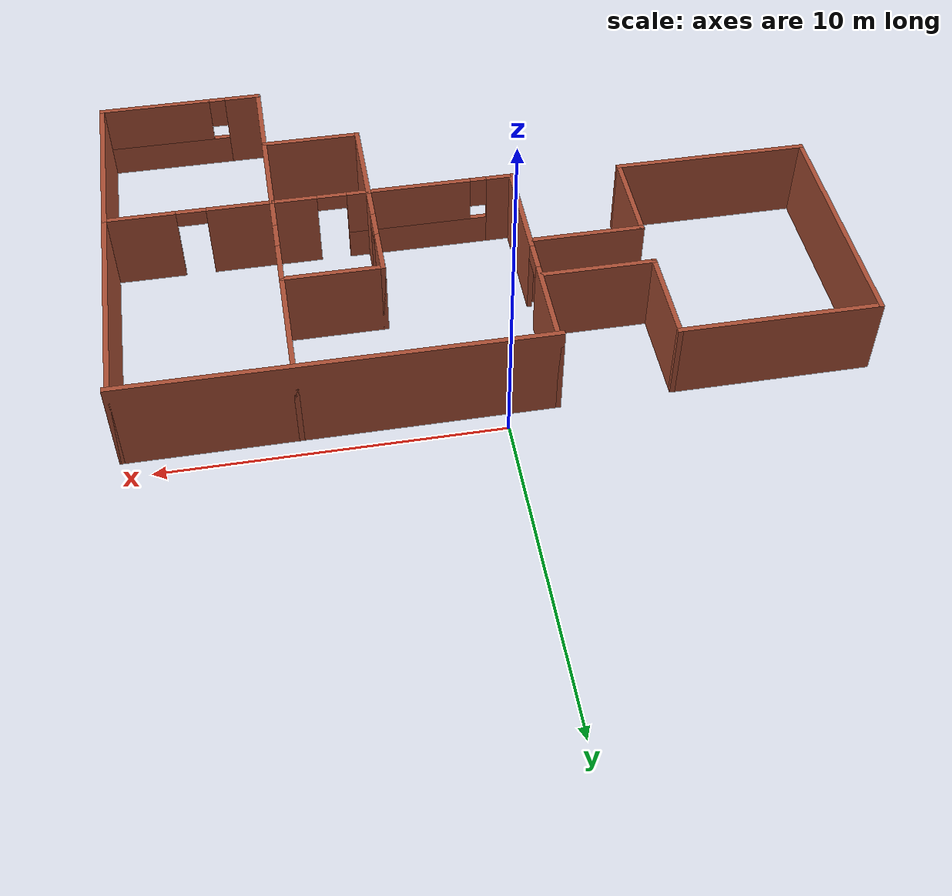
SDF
<?xml version='1.0'?>
<sdf version='1.6'>
  <model name='IslamHouse2'>
    <pose frame=''>0.015 -6.96 0 0 -0 0</pose>
    <link name='Wall_0'>
      <collision name='Wall_0_Collision'>
        <geometry>
          <box>
            <size>12.5 0.15 3</size>
          </box>
        </geometry>
        <pose frame=''>0 0 1.5 0 -0 0</pose>
      </collision>
      <visual name='Wall_0_Visual'>
        <pose frame=''>0 0 1.5 0 -0 0</pose>
        <geometry>
          <box>
            <size>12.5 0.15 3</size>
          </box>
        </geometry>
        <material>
          <script>
            <uri>file://media/materials/scripts/gazebo.material</uri>
            <name>Gazebo/Bricks</name>
          </script>
          <ambient>1 1 1 1</ambient>
        </material>
        <meta>
          <layer>0</layer>
        </meta>
      </visual>
      <pose frame=''>4.61 6.35 0 0 -0 0</pose>
    </link>
    <link name='Wall_10'>
      <pose frame=''>8.21 -1 0 0 -0 0</pose>
      <visual name='Wall_10_Visual_0'>
        <pose frame=''>-1.4725 0 1.25 0 -0 0</pose>
        <geometry>
          <box>
            <size>2.055 0.15 2.5</size>
          </box>
        </geometry>
        <material>
          <script>
            <uri>file://media/materials/scripts/gazebo.material</uri>
            <name>Gazebo/Bricks</name>
          </script>
          <ambient>1 1 1 1</ambient>
        </material>
        <meta>
          <layer>0</layer>
        </meta>
      </visual>
      <collision name='Wall_10_Collision_0'>
        <geometry>
          <box>
            <size>2.055 0.15 2.5</size>
          </box>
        </geometry>
        <pose frame=''>-1.4725 0 1.25 0 -0 0</pose>
      </collision>
      <visual name='Wall_10_Visual_1'>
        <pose frame=''>1.4775 0 1.25 0 -0 0</pose>
        <geometry>
          <box>
            <size>2.045 0.15 2.5</size>
          </box>
        </geometry>
        <material>
          <script>
            <uri>file://media/materials/scripts/gazebo.material</uri>
            <name>Gazebo/Bricks</name>
          </script>
          <ambient>1 1 1 1</ambient>
        </material>
        <meta>
          <layer>0</layer>
        </meta>
      </visual>
      <collision name='Wall_10_Collision_1'>
        <geometry>
          <box>
            <size>2.045 0.15 2.5</size>
          </box>
        </geometry>
        <pose frame=''>1.4775 0 1.25 0 -0 0</pose>
      </collision>
      <visual name='Wall_10_Visual_2'>
        <pose frame=''>0.004999 0 2.25 0 -0 0</pose>
        <geometry>
          <box>
            <size>0.9 0.15 0.5</size>
          </box>
        </geometry>
        <material>
          <script>
            <uri>file://media/materials/scripts/gazebo.material</uri>
            <name>Gazebo/Bricks</name>
          </script>
          <ambient>1 1 1 1</ambient>
        </material>
        <meta>
          <layer>0</layer>
        </meta>
      </visual>
      <collision name='Wall_10_Collision_2'>
        <geometry>
          <box>
            <size>0.9 0.15 0.5</size>
          </box>
        </geometry>
        <pose frame=''>0.004999 0 2.25 0 -0 0</pose>
      </collision>
    </link>
    <link name='Wall_14'>
      <collision name='Wall_14_Collision'>
        <geometry>
          <box>
            <size>7.5 0.15 2.5</size>
          </box>
        </geometry>
        <pose frame=''>0 0 1.25 0 -0 0</pose>
      </collision>
      <visual name='Wall_14_Visual'>
        <pose frame=''>0 0 1.25 0 -0 0</pose>
        <geometry>
          <box>
            <size>7.5 0.15 2.5</size>
          </box>
        </geometry>
        <material>
          <script>
            <uri>file://media/materials/scripts/gazebo.material</uri>
            <name>Gazebo/Bricks</name>
          </script>
          <ambient>1 1 1 1</ambient>
        </material>
        <meta>
          <layer>0</layer>
        </meta>
      </visual>
      <pose frame=''>10.785 2.675 0 0 -0 -1.5708</pose>
    </link>
    <link name='Wall_19'>
      <pose frame=''>2.855 0.715 0 0 -0 1.5708</pose>
      <visual name='Wall_19_Visual_0'>
        <pose frame=''>-1.2025 0 1.25 0 -0 0</pose>
        <geometry>
          <box>
            <size>1.095 0.15 2.5</size>
          </box>
        </geometry>
        <material>
          <script>
            <uri>file://media/materials/scripts/gazebo.material</uri>
            <name>Gazebo/Bricks</name>
          </script>
          <ambient>1 1 1 1</ambient>
        </material>
        <meta>
          <layer>0</layer>
        </meta>
      </visual>
      <collision name='Wall_19_Collision_0'>
        <geometry>
          <box>
            <size>1.095 0.15 2.5</size>
          </box>
        </geometry>
        <pose frame=''>-1.2025 0 1.25 0 -0 0</pose>
      </collision>
      <visual name='Wall_19_Visual_1'>
        <pose frame=''>0.9975 0 1.25 0 -0 0</pose>
        <geometry>
          <box>
            <size>1.505 0.15 2.5</size>
          </box>
        </geometry>
        <material>
          <script>
            <uri>file://media/materials/scripts/gazebo.material</uri>
            <name>Gazebo/Bricks</name>
          </script>
          <ambient>1 1 1 1</ambient>
        </material>
        <meta>
          <layer>0</layer>
        </meta>
      </visual>
      <collision name='Wall_19_Collision_1'>
        <geometry>
          <box>
            <size>1.505 0.15 2.5</size>
          </box>
        </geometry>
        <pose frame=''>0.9975 0 1.25 0 -0 0</pose>
      </collision>
      <visual name='Wall_19_Visual_2'>
        <pose frame=''>-0.205 0 2.25 0 -0 0</pose>
        <geometry>
          <box>
            <size>0.9 0.15 0.5</size>
          </box>
        </geometry>
        <material>
          <script>
            <uri>file://media/materials/scripts/gazebo.material</uri>
            <name>Gazebo/Bricks</name>
          </script>
          <ambient>1 1 1 1</ambient>
        </material>
        <meta>
          <layer>0</layer>
        </meta>
      </visual>
      <collision name='Wall_19_Collision_2'>
        <geometry>
          <box>
            <size>0.9 0.15 0.5</size>
          </box>
        </geometry>
        <pose frame=''>-0.205 0 2.25 0 -0 0</pose>
      </collision>
    </link>
    <link name='Wall_2'>
      <pose frame=''>-1.565 2.675 0 0 -0 -1.5708</pose>
      <visual name='Wall_2_Visual_0'>
        <pose frame=''>-2.1125 0 1.25 0 -0 0</pose>
        <geometry>
          <box>
            <size>3.275 0.15 2.5</size>
          </box>
        </geometry>
        <material>
          <script>
            <uri>file://media/materials/scripts/gazebo.material</uri>
            <name>Gazebo/Bricks</name>
          </script>
          <ambient>1 1 1 1</ambient>
        </material>
        <meta>
          <layer>0</layer>
        </meta>
      </visual>
      <collision name='Wall_2_Collision_0'>
        <geometry>
          <box>
            <size>3.275 0.15 2.5</size>
          </box>
        </geometry>
        <pose frame=''>-2.1125 0 1.25 0 -0 0</pose>
      </collision>
      <visual name='Wall_2_Visual_1'>
        <pose frame=''>2.0875 0 1.25 0 -0 0</pose>
        <geometry>
          <box>
            <size>3.325 0.15 2.5</size>
          </box>
        </geometry>
        <material>
          <script>
            <uri>file://media/materials/scripts/gazebo.material</uri>
            <name>Gazebo/Bricks</name>
          </script>
          <ambient>1 1 1 1</ambient>
        </material>
        <meta>
          <layer>0</layer>
        </meta>
      </visual>
      <collision name='Wall_2_Collision_1'>
        <geometry>
          <box>
            <size>3.325 0.15 2.5</size>
          </box>
        </geometry>
        <pose frame=''>2.0875 0 1.25 0 -0 0</pose>
      </collision>
      <visual name='Wall_2_Visual_2'>
        <pose frame=''>-0.025 0 2.25 0 -0 0</pose>
        <geometry>
          <box>
            <size>0.9 0.15 0.5</size>
          </box>
        </geometry>
        <material>
          <script>
            <uri>file://media/materials/scripts/gazebo.material</uri>
            <name>Gazebo/Bricks</name>
          </script>
          <ambient>1 1 1 1</ambient>
        </material>
        <meta>
          <layer>0</layer>
        </meta>
      </visual>
      <collision name='Wall_2_Collision_2'>
        <geometry>
          <box>
            <size>0.9 0.15 0.5</size>
          </box>
        </geometry>
        <pose frame=''>-0.025 0 2.25 0 -0 0</pose>
      </collision>
    </link>
    <link name='Wall_21'>
      <collision name='Wall_21_Collision'>
        <geometry>
          <box>
            <size>3.07 0.15 2.5</size>
          </box>
        </geometry>
        <pose frame=''>0 0 1.25 0 -0 0</pose>
      </collision>
      <visual name='Wall_21_Visual'>
        <pose frame=''>0 0 1.25 0 -0 0</pose>
        <geometry>
          <box>
            <size>3.07 0.15 2.5</size>
          </box>
        </geometry>
        <material>
          <script>
            <uri>file://media/materials/scripts/gazebo.material</uri>
            <name>Gazebo/Bricks</name>
          </script>
          <ambient>1 1 1 1</ambient>
        </material>
        <meta>
          <layer>0</layer>
        </meta>
      </visual>
      <pose frame=''>4.315 2.39 0 0 -0 0</pose>
    </link>
    <link name='Wall_24'>
      <collision name='Wall_24_Collision'>
        <geometry>
          <box>
            <size>3 0.15 2.5</size>
          </box>
        </geometry>
        <pose frame=''>0 0 1.25 0 -0 0</pose>
      </collision>
      <visual name='Wall_24_Visual'>
        <pose frame=''>0 0 1.25 0 -0 0</pose>
        <geometry>
          <box>
            <size>3 0.15 2.5</size>
          </box>
        </geometry>
        <material>
          <script>
            <uri>file://media/materials/scripts/gazebo.material</uri>
            <name>Gazebo/Bricks</name>
          </script>
          <ambient>1 1 1 1</ambient>
        </material>
        <meta>
          <layer>0</layer>
        </meta>
      </visual>
      <pose frame=''>2.855 -2.385 0 0 -0 -1.5708</pose>
    </link>
    <link name='Wall_26'>
      <collision name='Wall_26_Collision'>
        <geometry>
          <box>
            <size>3.07 0.15 2.5</size>
          </box>
        </geometry>
        <pose frame=''>0 0 1.25 0 -0 0</pose>
      </collision>
      <visual name='Wall_26_Visual'>
        <pose frame=''>0 0 1.25 0 -0 0</pose>
        <geometry>
          <box>
            <size>3.07 0.15 2.5</size>
          </box>
        </geometry>
        <material>
          <script>
            <uri>file://media/materials/scripts/gazebo.material</uri>
            <name>Gazebo/Bricks</name>
          </script>
          <ambient>1 1 1 1</ambient>
        </material>
        <meta>
          <layer>0</layer>
        </meta>
      </visual>
      <pose frame=''>4.315 -3.81 0 0 -0 0</pose>
    </link>
    <link name='Wall_28'>
      <collision name='Wall_28_Collision'>
        <geometry>
          <box>
            <size>5.5 0.15 2.5</size>
          </box>
        </geometry>
        <pose frame=''>0 0 1.25 0 -0 0</pose>
      </collision>
      <visual name='Wall_28_Visual'>
        <pose frame=''>0 0 1.25 0 -0 0</pose>
        <geometry>
          <box>
            <size>5.5 0.15 2.5</size>
          </box>
        </geometry>
        <material>
          <script>
            <uri>file://media/materials/scripts/gazebo.material</uri>
            <name>Gazebo/Bricks</name>
          </script>
          <ambient>1 1 1 1</ambient>
        </material>
        <meta>
          <layer>0</layer>
        </meta>
      </visual>
      <pose frame=''>5.785 -3.675 0 0 -0 -1.5708</pose>
    </link>
    <link name='Wall_29'>
      <collision name='Wall_29_Collision'>
        <geometry>
          <box>
            <size>0.15 0.15 2.5</size>
          </box>
        </geometry>
        <pose frame=''>0 0 1.25 0 -0 0</pose>
      </collision>
      <visual name='Wall_29_Visual'>
        <pose frame=''>0 0 1.25 0 -0 0</pose>
        <geometry>
          <box>
            <size>0.15 0.15 2.5</size>
          </box>
        </geometry>
        <material>
          <script>
            <uri>file://media/materials/scripts/gazebo.material</uri>
            <name>Gazebo/Grey</name>
          </script>
          <ambient>1 1 1 1</ambient>
        </material>
        <meta>
          <layer>0</layer>
        </meta>
      </visual>
      <pose frame=''>5.785 -6.35 0 0 -0 0</pose>
    </link>
    <link name='Wall_31'>
      <pose frame=''>8.285 -6.35 0 0 -0 0</pose>
      <visual name='Wall_31_Visual_0'>
        <pose frame=''>-1.9975 0 1.25 0 -0 0</pose>
        <geometry>
          <box>
            <size>1.155 0.15 2.5</size>
          </box>
        </geometry>
        <material>
          <script>
            <uri>file://media/materials/scripts/gazebo.material</uri>
            <name>Gazebo/Bricks</name>
          </script>
          <ambient>1 1 1 1</ambient>
        </material>
        <meta>
          <layer>0</layer>
        </meta>
      </visual>
      <collision name='Wall_31_Collision_0'>
        <geometry>
          <box>
            <size>1.155 0.15 2.5</size>
          </box>
        </geometry>
        <pose frame=''>-1.9975 0 1.25 0 -0 0</pose>
      </collision>
      <visual name='Wall_31_Visual_1'>
        <pose frame=''>0.5775 0 0.5 0 -0 0</pose>
        <geometry>
          <box>
            <size>3.995 0.15 1</size>
          </box>
        </geometry>
        <material>
          <script>
            <uri>file://media/materials/scripts/gazebo.material</uri>
            <name>Gazebo/Bricks</name>
          </script>
          <ambient>1 1 1 1</ambient>
        </material>
        <meta>
          <layer>0</layer>
        </meta>
      </visual>
      <collision name='Wall_31_Collision_1'>
        <geometry>
          <box>
            <size>3.995 0.15 1</size>
          </box>
        </geometry>
        <pose frame=''>0.5775 0 0.5 0 -0 0</pose>
      </collision>
      <visual name='Wall_31_Visual_2'>
        <pose frame=''>0.8275 0 1.75 0 -0 0</pose>
        <geometry>
          <box>
            <size>3.495 0.15 1.5</size>
          </box>
        </geometry>
        <material>
          <script>
            <uri>file://media/materials/scripts/gazebo.material</uri>
            <name>Gazebo/Bricks</name>
          </script>
          <ambient>1 1 1 1</ambient>
        </material>
        <meta>
          <layer>0</layer>
        </meta>
      </visual>
      <collision name='Wall_31_Collision_2'>
        <geometry>
          <box>
            <size>3.495 0.15 1.5</size>
          </box>
        </geometry>
        <pose frame=''>0.8275 0 1.75 0 -0 0</pose>
      </collision>
      <visual name='Wall_31_Visual_3'>
        <pose frame=''>-1.17 0 2 0 -0 0</pose>
        <geometry>
          <box>
            <size>0.5 0.15 1</size>
          </box>
        </geometry>
        <material>
          <script>
            <uri>file://media/materials/scripts/gazebo.material</uri>
            <name>Gazebo/Bricks</name>
          </script>
          <ambient>1 1 1 1</ambient>
        </material>
        <meta>
          <layer>0</layer>
        </meta>
      </visual>
      <collision name='Wall_31_Collision_3'>
        <geometry>
          <box>
            <size>0.5 0.15 1</size>
          </box>
        </geometry>
        <pose frame=''>-1.17 0 2 0 -0 0</pose>
      </collision>
    </link>
    <link name='Wall_35'>
      <collision name='Wall_35_Collision'>
        <geometry>
          <box>
            <size>5.5 0.15 2.5</size>
          </box>
        </geometry>
        <pose frame=''>0 0 1.25 0 -0 0</pose>
      </collision>
      <visual name='Wall_35_Visual'>
        <pose frame=''>0 0 1.25 0 -0 0</pose>
        <geometry>
          <box>
            <size>5.5 0.15 2.5</size>
          </box>
        </geometry>
        <material>
          <script>
            <uri>file://media/materials/scripts/gazebo.material</uri>
            <name>Gazebo/Bricks</name>
          </script>
          <ambient>1 1 1 1</ambient>
        </material>
        <meta>
          <layer>0</layer>
        </meta>
      </visual>
      <pose frame=''>10.785 -3.675 0 0 -0 -1.5708</pose>
    </link>
    <link name='Wall_39'>
      <collision name='Wall_39_Collision'>
        <geometry>
          <box>
            <size>3.5 0.15 2.5</size>
          </box>
        </geometry>
        <pose frame=''>0 0 1.25 0 -0 0</pose>
      </collision>
      <visual name='Wall_39_Visual'>
        <pose frame=''>0 0 1.25 0 -0 0</pose>
        <geometry>
          <box>
            <size>3.5 0.15 2.5</size>
          </box>
        </geometry>
        <material>
          <script>
            <uri>file://media/materials/scripts/gazebo.material</uri>
            <name>Gazebo/Bricks</name>
          </script>
          <ambient>1 1 1 1</ambient>
        </material>
        <meta>
          <layer>0</layer>
        </meta>
      </visual>
      <pose frame=''>-3.26 3.48 0 0 -0 3.14159</pose>
    </link>
    <link name='Wall_41'>
      <collision name='Wall_41_Collision'>
        <geometry>
          <box>
            <size>3.51 0.15 2.5</size>
          </box>
        </geometry>
        <pose frame=''>0 0 1.25 0 -0 0</pose>
      </collision>
      <visual name='Wall_41_Visual'>
        <pose frame=''>0 0 1.25 0 -0 0</pose>
        <geometry>
          <box>
            <size>3.51 0.15 2.5</size>
          </box>
        </geometry>
        <material>
          <script>
            <uri>file://media/materials/scripts/gazebo.material</uri>
            <name>Gazebo/Bricks</name>
          </script>
          <ambient>1 1 1 1</ambient>
        </material>
        <meta>
          <layer>0</layer>
        </meta>
      </visual>
      <pose frame=''>-3.255 1.99 0 0 -0 3.14159</pose>
    </link>
    <link name='Wall_44'>
      <collision name='Wall_44_Collision'>
        <geometry>
          <box>
            <size>3 0.15 2.5</size>
          </box>
        </geometry>
        <pose frame=''>0 0 1.25 0 -0 0</pose>
      </collision>
      <visual name='Wall_44_Visual'>
        <pose frame=''>0 0 1.25 0 -0 0</pose>
        <geometry>
          <box>
            <size>3 0.15 2.5</size>
          </box>
        </geometry>
        <material>
          <script>
            <uri>file://media/materials/scripts/gazebo.material</uri>
            <name>Gazebo/Bricks</name>
          </script>
          <ambient>1 1 1 1</ambient>
        </material>
        <meta>
          <layer>0</layer>
        </meta>
      </visual>
      <pose frame=''>-4.935 4.905 0 0 -0 1.5708</pose>
    </link>
    <link name='Wall_46'>
      <collision name='Wall_46_Collision'>
        <geometry>
          <box>
            <size>3 0.15 2.5</size>
          </box>
        </geometry>
        <pose frame=''>0 0 1.25 0 -0 0</pose>
      </collision>
      <visual name='Wall_46_Visual'>
        <pose frame=''>0 0 1.25 0 -0 0</pose>
        <geometry>
          <box>
            <size>3 0.15 2.5</size>
          </box>
        </geometry>
        <material>
          <script>
            <uri>file://media/materials/scripts/gazebo.material</uri>
            <name>Gazebo/Bricks</name>
          </script>
          <ambient>1 1 1 1</ambient>
        </material>
        <meta>
          <layer>0</layer>
        </meta>
      </visual>
      <pose frame=''>-4.935 0.565 0 0 -0 -1.5708</pose>
    </link>
    <link name='Wall_48'>
      <collision name='Wall_48_Collision'>
        <geometry>
          <box>
            <size>6 0.15 2.5</size>
          </box>
        </geometry>
        <pose frame=''>0 0 1.25 0 -0 0</pose>
      </collision>
      <visual name='Wall_48_Visual'>
        <pose frame=''>0 0 1.25 0 -0 0</pose>
        <geometry>
          <box>
            <size>6 0.15 2.5</size>
          </box>
        </geometry>
        <material>
          <script>
            <uri>file://media/materials/scripts/gazebo.material</uri>
            <name>Gazebo/Bricks</name>
          </script>
          <ambient>1 1 1 1</ambient>
        </material>
        <meta>
          <layer>0</layer>
        </meta>
      </visual>
      <pose frame=''>-7.86 6.33 0 0 -0 3.14159</pose>
    </link>
    <link name='Wall_5'>
      <pose frame=''>2.11 -1 0 0 -0 0</pose>
      <visual name='Wall_5_Visual_0'>
        <pose frame=''>-3.3225 0 1.25 0 -0 0</pose>
        <geometry>
          <box>
            <size>0.855 0.15 2.5</size>
          </box>
        </geometry>
        <material>
          <script>
            <uri>file://media/materials/scripts/gazebo.material</uri>
            <name>Gazebo/Bricks</name>
          </script>
          <ambient>1 1 1 1</ambient>
        </material>
        <meta>
          <layer>0</layer>
        </meta>
      </visual>
      <collision name='Wall_5_Collision_0'>
        <geometry>
          <box>
            <size>0.855 0.15 2.5</size>
          </box>
        </geometry>
        <pose frame=''>-3.3225 0 1.25 0 -0 0</pose>
      </collision>
      <visual name='Wall_5_Visual_1'>
        <pose frame=''>3.0325 0 1.25 0 -0 0</pose>
        <geometry>
          <box>
            <size>1.435 0.15 2.5</size>
          </box>
        </geometry>
        <material>
          <script>
            <uri>file://media/materials/scripts/gazebo.material</uri>
            <name>Gazebo/Bricks</name>
          </script>
          <ambient>1 1 1 1</ambient>
        </material>
        <meta>
          <layer>0</layer>
        </meta>
      </visual>
      <collision name='Wall_5_Collision_1'>
        <geometry>
          <box>
            <size>1.435 0.15 2.5</size>
          </box>
        </geometry>
        <pose frame=''>3.0325 0 1.25 0 -0 0</pose>
      </collision>
      <visual name='Wall_5_Visual_2'>
        <pose frame=''>-0.74 0 0.5 0 -0 0</pose>
        <geometry>
          <box>
            <size>4.31 0.15 1</size>
          </box>
        </geometry>
        <material>
          <script>
            <uri>file://media/materials/scripts/gazebo.material</uri>
            <name>Gazebo/Bricks</name>
          </script>
          <ambient>1 1 1 1</ambient>
        </material>
        <meta>
          <layer>0</layer>
        </meta>
      </visual>
      <collision name='Wall_5_Collision_2'>
        <geometry>
          <box>
            <size>4.31 0.15 1</size>
          </box>
        </geometry>
        <pose frame=''>-0.74 0 0.5 0 -0 0</pose>
      </collision>
      <visual name='Wall_5_Visual_3'>
        <pose frame=''>-0.49 0 1.75 0 -0 0</pose>
        <geometry>
          <box>
            <size>3.81 0.15 1.5</size>
          </box>
        </geometry>
        <material>
          <script>
            <uri>file://media/materials/scripts/gazebo.material</uri>
            <name>Gazebo/Bricks</name>
          </script>
          <ambient>1 1 1 1</ambient>
        </material>
        <meta>
          <layer>0</layer>
        </meta>
      </visual>
      <collision name='Wall_5_Collision_3'>
        <geometry>
          <box>
            <size>3.81 0.15 1.5</size>
          </box>
        </geometry>
        <pose frame=''>-0.49 0 1.75 0 -0 0</pose>
      </collision>
      <visual name='Wall_5_Visual_4'>
        <pose frame=''>-2.645 0 2 0 -0 0</pose>
        <geometry>
          <box>
            <size>0.5 0.15 1</size>
          </box>
        </geometry>
        <material>
          <script>
            <uri>file://media/materials/scripts/gazebo.material</uri>
            <name>Gazebo/Bricks</name>
          </script>
          <ambient>1 1 1 1</ambient>
        </material>
        <meta>
          <layer>0</layer>
        </meta>
      </visual>
      <collision name='Wall_5_Collision_4'>
        <geometry>
          <box>
            <size>0.5 0.15 1</size>
          </box>
        </geometry>
        <pose frame=''>-2.645 0 2 0 -0 0</pose>
      </collision>
      <visual name='Wall_5_Visual_5'>
        <pose frame=''>1.865 0 2.25 0 -0 0</pose>
        <geometry>
          <box>
            <size>0.9 0.15 0.5</size>
          </box>
        </geometry>
        <material>
          <script>
            <uri>file://media/materials/scripts/gazebo.material</uri>
            <name>Gazebo/Bricks</name>
          </script>
          <ambient>1 1 1 1</ambient>
        </material>
        <meta>
          <layer>0</layer>
        </meta>
      </visual>
      <collision name='Wall_5_Collision_5'>
        <geometry>
          <box>
            <size>0.9 0.15 0.5</size>
          </box>
        </geometry>
        <pose frame=''>1.865 0 2.25 0 -0 0</pose>
      </collision>
    </link>
    <link name='Wall_50'>
      <collision name='Wall_50_Collision'>
        <geometry>
          <box>
            <size>6 0.15 2.5</size>
          </box>
        </geometry>
        <pose frame=''>0 0 1.25 0 -0 0</pose>
      </collision>
      <visual name='Wall_50_Visual'>
        <pose frame=''>0 0 1.25 0 -0 0</pose>
        <geometry>
          <box>
            <size>6 0.15 2.5</size>
          </box>
        </geometry>
        <material>
          <script>
            <uri>file://media/materials/scripts/gazebo.material</uri>
            <name>Gazebo/Bricks</name>
          </script>
          <ambient>1 1 1 1</ambient>
        </material>
        <meta>
          <layer>0</layer>
        </meta>
      </visual>
      <pose frame=''>-7.86 -0.86 0 0 -0 3.14159</pose>
    </link>
    <link name='Wall_55'>
      <collision name='Wall_55_Collision'>
        <geometry>
          <box>
            <size>7.33 0.15 2.5</size>
          </box>
        </geometry>
        <pose frame=''>0 0 1.25 0 -0 0</pose>
      </collision>
      <visual name='Wall_55_Visual'>
        <pose frame=''>0 0 1.25 0 -0 0</pose>
        <geometry>
          <box>
            <size>7.33 0.15 2.5</size>
          </box>
        </geometry>
        <material>
          <script>
            <uri>file://media/materials/scripts/gazebo.material</uri>
            <name>Gazebo/Bricks</name>
          </script>
          <ambient>1 1 1 1</ambient>
        </material>
        <meta>
          <layer>0</layer>
        </meta>
      </visual>
      <pose frame=''>-10.785 2.74 0 0 -0 -1.5708</pose>
    </link>
    <link name='Wall_8'>
      <pose frame=''>5.785 2.675 0 0 -0 1.5708</pose>
      <visual name='Wall_8_Visual_0'>
        <pose frame=''>-3.1775 0 1.25 0 -0 0</pose>
        <geometry>
          <box>
            <size>1.145 0.15 2.5</size>
          </box>
        </geometry>
        <material>
          <script>
            <uri>file://media/materials/scripts/gazebo.material</uri>
            <name>Gazebo/Bricks</name>
          </script>
          <ambient>1 1 1 1</ambient>
        </material>
        <meta>
          <layer>0</layer>
        </meta>
      </visual>
      <collision name='Wall_8_Collision_0'>
        <geometry>
          <box>
            <size>1.145 0.15 2.5</size>
          </box>
        </geometry>
        <pose frame=''>-3.1775 0 1.25 0 -0 0</pose>
      </collision>
      <visual name='Wall_8_Visual_1'>
        <pose frame=''>1.0225 0 1.25 0 -0 0</pose>
        <geometry>
          <box>
            <size>5.455 0.15 2.5</size>
          </box>
        </geometry>
        <material>
          <script>
            <uri>file://media/materials/scripts/gazebo.material</uri>
            <name>Gazebo/Bricks</name>
          </script>
          <ambient>1 1 1 1</ambient>
        </material>
        <meta>
          <layer>0</layer>
        </meta>
      </visual>
      <collision name='Wall_8_Collision_1'>
        <geometry>
          <box>
            <size>5.455 0.15 2.5</size>
          </box>
        </geometry>
        <pose frame=''>1.0225 0 1.25 0 -0 0</pose>
      </collision>
      <visual name='Wall_8_Visual_2'>
        <pose frame=''>-2.155 0 2.25 0 -0 0</pose>
        <geometry>
          <box>
            <size>0.9 0.15 0.5</size>
          </box>
        </geometry>
        <material>
          <script>
            <uri>file://media/materials/scripts/gazebo.material</uri>
            <name>Gazebo/Bricks</name>
          </script>
          <ambient>1 1 1 1</ambient>
        </material>
        <meta>
          <layer>0</layer>
        </meta>
      </visual>
      <collision name='Wall_8_Collision_2'>
        <geometry>
          <box>
            <size>0.9 0.15 0.5</size>
          </box>
        </geometry>
        <pose frame=''>-2.155 0 2.25 0 -0 0</pose>
      </collision>
    </link>
    <static>1</static>
  </model>
</sdf>
